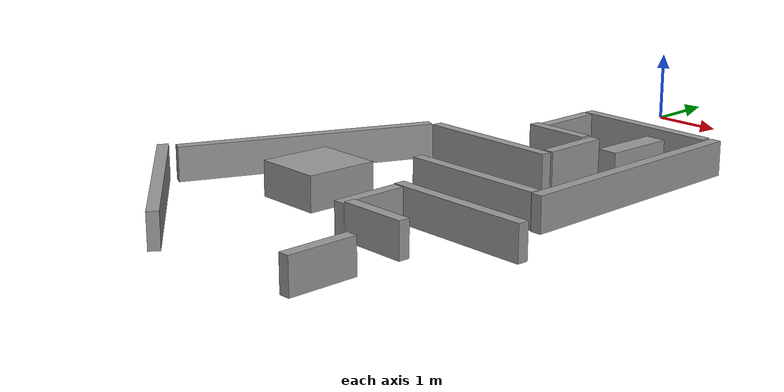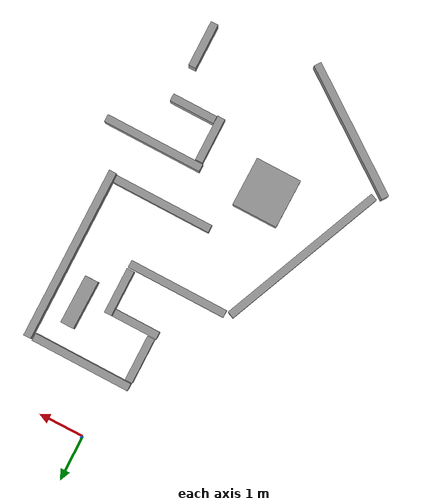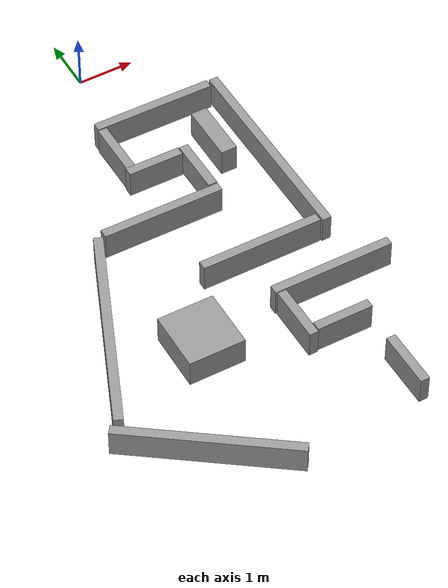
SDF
<sdf version="1.6">
 <model name="ws18_amr_master">
  <link name="link_0">
   <pose>-0.315045 -1.91588 -0 0 -0 0</pose>
   <inertial>
    <mass>0.0824965</mass>
    <inertia>
     <ixx>0.00863488</ixx>
     <ixy>0</ixy>
     <ixz>0</ixz>
     <iyy>0.0019429</iyy>
     <iyz>0</iyz>
     <izz>0.00705746</izz>
    </inertia>
   </inertial>
   <visual name="visual">
    <geometry><box><size>0.163038 1 0.505999</size></box></geometry>
    <material>
     <lighting>1</lighting>
     <script><uri>file://media/materials/scripts/gazebo.material</uri><name>Gazebo/Grey</name></script>
     <ambient>0.3 0.3 0.3 1</ambient>
     <diffuse>0.7 0.7 0.7 1</diffuse>
     <specular>0.01 0.01 0.01 1</specular>
     <emissive>0 0 0 1</emissive>
    </material>
   </visual>
   <collision name="collision">
    <geometry><box><size>0.163038 1 0.505999</size></box></geometry>
    <surface>
     <friction>
      <ode><mu>1</mu><mu2>1</mu2><fdir1>0 0 0</fdir1><slip1>0</slip1><slip2>0</slip2></ode>
      <torsional>
       <coefficient>1</coefficient>
       <patch_radius>0</patch_radius>
       <surface_radius>0</surface_radius>
       <use_patch_radius>1</use_patch_radius>
       <ode><slip>0</slip></ode>
      </torsional>
     </friction>
     <bounce><restitution_coefficient>0</restitution_coefficient><threshold>1e+06</threshold></bounce>
     <contact>
      <collide_without_contact>0</collide_without_contact>
      <collide_without_contact_bitmask>1</collide_without_contact_bitmask>
      <collide_bitmask>1</collide_bitmask>
      <ode>
       <soft_cfm>0</soft_cfm>
       <soft_erp>0.2</soft_erp>
       <kp>1e+13</kp>
       <kd>1</kd>
       <max_vel>0.01</max_vel>
       <min_depth>0</min_depth>
      </ode>
      <bullet>
       <split_impulse>1</split_impulse>
       <split_impulse_penetration_threshold>-0.01</split_impulse_penetration_threshold>
       <soft_cfm>0</soft_cfm>
       <soft_erp>0.2</soft_erp>
       <kp>1e+13</kp>
       <kd>1</kd>
      </bullet>
     </contact>
    </surface>
   </collision>
  </link>
  <link name="link_0_clone">
   <pose>0.710611 -1.33183 0.001064 0 0.012172 1.55915</pose>
   <inertial>
    <mass>0.180006</mass>
    <inertia>
     <ixx>0.0752589</ixx>
     <ixy>0</ixy>
     <ixz>0</ixz>
     <iyy>0.00423938</iyy>
     <iyz>0</iyz>
     <izz>0.071817</izz>
    </inertia>
   </inertial>
   <visual name="visual">
    <geometry><box><size>0.163038 2.18199 0.505999</size></box></geometry>
    <material>
     <lighting>1</lighting>
     <script><uri>file://media/materials/scripts/gazebo.material</uri><name>Gazebo/Grey</name></script>
     <ambient>0.3 0.3 0.3 1</ambient>
     <diffuse>0.7 0.7 0.7 1</diffuse>
     <specular>0.01 0.01 0.01 1</specular>
     <emissive>0 0 0 1</emissive>
     <shader type="pixel"/>
    </material>
   </visual>
   <collision name="collision">
    <geometry><box><size>0.163038 2.18199 0.505999</size></box></geometry>
    <surface>
     <friction>
      <ode><mu>1</mu><mu2>1</mu2><fdir1>0 0 0</fdir1><slip1>0</slip1><slip2>0</slip2></ode>
      <torsional>
       <coefficient>1</coefficient>
       <patch_radius>0</patch_radius>
       <surface_radius>0</surface_radius>
       <use_patch_radius>1</use_patch_radius>
       <ode><slip>0</slip></ode>
      </torsional>
     </friction>
     <bounce><restitution_coefficient>0</restitution_coefficient><threshold>1e+06</threshold></bounce>
     <contact>
      <collide_without_contact>0</collide_without_contact>
      <collide_without_contact_bitmask>1</collide_without_contact_bitmask>
      <collide_bitmask>1</collide_bitmask>
      <ode>
       <soft_cfm>0</soft_cfm>
       <soft_erp>0.2</soft_erp>
       <kp>1e+13</kp>
       <kd>1</kd>
       <max_vel>0.01</max_vel>
       <min_depth>0</min_depth>
      </ode>
      <bullet>
       <split_impulse>1</split_impulse>
       <split_impulse_penetration_threshold>-0.01</split_impulse_penetration_threshold>
       <soft_cfm>0</soft_cfm>
       <soft_erp>0.2</soft_erp>
       <kp>1e+13</kp>
       <kd>1</kd>
      </bullet>
     </contact>
    </surface>
   </collision>
  </link>
  <link name="link_0_clone_0">
   <pose>0.685279 -2.9377 -0 0 -0 0</pose>
   <inertial>
    <mass>0.0824965</mass>
    <inertia>
     <ixx>0.00863488</ixx>
     <ixy>0</ixy>
     <ixz>0</ixz>
     <iyy>0.0019429</iyy>
     <iyz>0</iyz>
     <izz>0.00705746</izz>
    </inertia>
   </inertial>
   <visual name="visual">
    <geometry><box><size>0.163038 1 0.505999</size></box></geometry>
    <material>
     <lighting>1</lighting>
     <script><uri>file://media/materials/scripts/gazebo.material</uri><name>Gazebo/Grey</name></script>
     <ambient>0.3 0.3 0.3 1</ambient>
     <diffuse>0.7 0.7 0.7 1</diffuse>
     <specular>0.01 0.01 0.01 1</specular>
     <emissive>0 0 0 1</emissive>
     <shader type="pixel"/>
    </material>
   </visual>
   <collision name="collision">
    <geometry><box><size>0.163038 1 0.505999</size></box></geometry>
    <surface>
     <friction>
      <ode><mu>1</mu><mu2>1</mu2><fdir1>0 0 0</fdir1><slip1>0</slip1><slip2>0</slip2></ode>
      <torsional>
       <coefficient>1</coefficient>
       <patch_radius>0</patch_radius>
       <surface_radius>0</surface_radius>
       <use_patch_radius>1</use_patch_radius>
       <ode><slip>0</slip></ode>
      </torsional>
     </friction>
     <bounce><restitution_coefficient>0</restitution_coefficient><threshold>1e+06</threshold></bounce>
     <contact>
      <collide_without_contact>0</collide_without_contact>
      <collide_without_contact_bitmask>1</collide_without_contact_bitmask>
      <collide_bitmask>1</collide_bitmask>
      <ode>
       <soft_cfm>0</soft_cfm>
       <soft_erp>0.2</soft_erp>
       <kp>1e+13</kp>
       <kd>1</kd>
       <max_vel>0.01</max_vel>
       <min_depth>0</min_depth>
      </ode>
      <bullet>
       <split_impulse>1</split_impulse>
       <split_impulse_penetration_threshold>-0.01</split_impulse_penetration_threshold>
       <soft_cfm>0</soft_cfm>
       <soft_erp>0.2</soft_erp>
       <kp>1e+13</kp>
       <kd>1</kd>
      </bullet>
     </contact>
    </surface>
   </collision>
  </link>
  <link name="link_0_clone_1">
   <pose>1.92532 -3.16382 -0 0 -0 0</pose>
   <inertial>
    <mass>0.311198</mass>
    <inertia>
     <ixx>0.375669</ixx>
     <ixy>0</ixy>
     <ixz>0</ixz>
     <iyy>0.00732913</iyy>
     <iyz>0</iyz>
     <izz>0.369718</izz>
    </inertia>
   </inertial>
   <visual name="visual">
    <geometry><box><size>0.163038 3.77227 0.505999</size></box></geometry>
    <material>
     <lighting>1</lighting>
     <script><uri>file://media/materials/scripts/gazebo.material</uri><name>Gazebo/Grey</name></script>
     <ambient>0.3 0.3 0.3 1</ambient>
     <diffuse>0.7 0.7 0.7 1</diffuse>
     <specular>0.01 0.01 0.01 1</specular>
     <emissive>0 0 0 1</emissive>
     <shader type="pixel"/>
    </material>
   </visual>
   <collision name="collision">
    <geometry><box><size>0.163038 3.77227 0.505999</size></box></geometry>
    <surface>
     <friction>
      <ode><mu>1</mu><mu2>1</mu2><fdir1>0 0 0</fdir1><slip1>0</slip1><slip2>0</slip2></ode>
      <torsional>
       <coefficient>1</coefficient>
       <patch_radius>0</patch_radius>
       <surface_radius>0</surface_radius>
       <use_patch_radius>1</use_patch_radius>
       <ode><slip>0</slip></ode>
      </torsional>
     </friction>
     <bounce><restitution_coefficient>0</restitution_coefficient><threshold>1e+06</threshold></bounce>
     <contact>
      <collide_without_contact>0</collide_without_contact>
      <collide_without_contact_bitmask>1</collide_without_contact_bitmask>
      <collide_bitmask>1</collide_bitmask>
      <ode>
       <soft_cfm>0</soft_cfm>
       <soft_erp>0.2</soft_erp>
       <kp>1e+13</kp>
       <kd>1</kd>
       <max_vel>0.01</max_vel>
       <min_depth>0</min_depth>
      </ode>
      <bullet>
       <split_impulse>1</split_impulse>
       <split_impulse_penetration_threshold>-0.01</split_impulse_penetration_threshold>
       <soft_cfm>0</soft_cfm>
       <soft_erp>0.2</soft_erp>
       <kp>1e+13</kp>
       <kd>1</kd>
      </bullet>
     </contact>
    </surface>
   </collision>
  </link>
  <link name="link_0_clone_1_clone">
   <pose>-2.27947 -5.2883 -0 -0 -0 -0.406594</pose>
   <inertial>
    <mass>0.311198</mass>
    <inertia>
     <ixx>0.375669</ixx>
     <ixy>0</ixy>
     <ixz>0</ixz>
     <iyy>0.00732913</iyy>
     <iyz>0</iyz>
     <izz>0.369718</izz>
    </inertia>
   </inertial>
   <visual name="visual">
    <geometry><box><size>0.163038 3.77227 0.505999</size></box></geometry>
    <material>
     <lighting>1</lighting>
     <script><uri>file://media/materials/scripts/gazebo.material</uri><name>Gazebo/Grey</name></script>
     <ambient>0.3 0.3 0.3 1</ambient>
     <diffuse>0.7 0.7 0.7 1</diffuse>
     <specular>0.01 0.01 0.01 1</specular>
     <emissive>0 0 0 1</emissive>
     <shader type="pixel"/>
    </material>
   </visual>
   <collision name="collision">
    <geometry><box><size>0.163038 3.77227 0.505999</size></box></geometry>
    <surface>
     <friction>
      <ode><mu>1</mu><mu2>1</mu2><fdir1>0 0 0</fdir1><slip1>0</slip1><slip2>0</slip2></ode>
      <torsional>
       <coefficient>1</coefficient>
       <patch_radius>0</patch_radius>
       <surface_radius>0</surface_radius>
       <use_patch_radius>1</use_patch_radius>
       <ode><slip>0</slip></ode>
      </torsional>
     </friction>
     <bounce><restitution_coefficient>0</restitution_coefficient><threshold>1e+06</threshold></bounce>
     <contact>
      <collide_without_contact>0</collide_without_contact>
      <collide_without_contact_bitmask>1</collide_without_contact_bitmask>
      <collide_bitmask>1</collide_bitmask>
      <ode>
       <soft_cfm>0</soft_cfm>
       <soft_erp>0.2</soft_erp>
       <kp>1e+13</kp>
       <kd>1</kd>
       <max_vel>0.01</max_vel>
       <min_depth>0</min_depth>
      </ode>
      <bullet>
       <split_impulse>1</split_impulse>
       <split_impulse_penetration_threshold>-0.01</split_impulse_penetration_threshold>
       <soft_cfm>0</soft_cfm>
       <soft_erp>0.2</soft_erp>
       <kp>1e+13</kp>
       <kd>1</kd>
      </bullet>
     </contact>
    </surface>
   </collision>
  </link>
  <link name="link_0_clone_1_clone_clone">
   <pose>-2.0016 -8.01046 -0 0 0 -2.2011</pose>
   <inertial>
    <mass>0.252342</mass>
    <inertia>
     <ixx>0.202136</ixx>
     <ixy>0</ixy>
     <ixz>0</ixz>
     <iyy>0.005943</iyy>
     <iyz>0</iyz>
     <izz>0.197311</izz>
    </inertia>
   </inertial>
   <visual name="visual">
    <geometry><box><size>0.163038 3.05883 0.505999</size></box></geometry>
    <material>
     <lighting>1</lighting>
     <script><uri>file://media/materials/scripts/gazebo.material</uri><name>Gazebo/Grey</name></script>
     <ambient>0.3 0.3 0.3 1</ambient>
     <diffuse>0.7 0.7 0.7 1</diffuse>
     <specular>0.01 0.01 0.01 1</specular>
     <emissive>0 0 0 1</emissive>
     <shader type="pixel"/>
    </material>
   </visual>
   <collision name="collision">
    <geometry><box><size>0.163038 3.05883 0.505999</size></box></geometry>
    <surface>
     <friction>
      <ode><mu>1</mu><mu2>1</mu2><fdir1>0 0 0</fdir1><slip1>0</slip1><slip2>0</slip2></ode>
      <torsional>
       <coefficient>1</coefficient>
       <patch_radius>0</patch_radius>
       <surface_radius>0</surface_radius>
       <use_patch_radius>1</use_patch_radius>
       <ode><slip>0</slip></ode>
      </torsional>
     </friction>
     <bounce><restitution_coefficient>0</restitution_coefficient><threshold>1e+06</threshold></bounce>
     <contact>
      <collide_without_contact>0</collide_without_contact>
      <collide_without_contact_bitmask>1</collide_without_contact_bitmask>
      <collide_bitmask>1</collide_bitmask>
      <ode>
       <soft_cfm>0</soft_cfm>
       <soft_erp>0.2</soft_erp>
       <kp>1e+13</kp>
       <kd>1</kd>
       <max_vel>0.01</max_vel>
       <min_depth>0</min_depth>
      </ode>
      <bullet>
       <split_impulse>1</split_impulse>
       <split_impulse_penetration_threshold>-0.01</split_impulse_penetration_threshold>
       <soft_cfm>0</soft_cfm>
       <soft_erp>0.2</soft_erp>
       <kp>1e+13</kp>
       <kd>1</kd>
      </bullet>
     </contact>
    </surface>
   </collision>
  </link>
  <link name="link_0_clone_2">
   <pose>0.470275 -6.53761 -0 0 -0 0</pose>
   <inertial>
    <mass>0.0824965</mass>
    <inertia>
     <ixx>0.00863488</ixx>
     <ixy>0</ixy>
     <ixz>0</ixz>
     <iyy>0.0019429</iyy>
     <iyz>0</iyz>
     <izz>0.00705746</izz>
    </inertia>
   </inertial>
   <visual name="visual">
    <geometry><box><size>0.163038 1 0.505999</size></box></geometry>
    <material>
     <lighting>1</lighting>
     <script><uri>file://media/materials/scripts/gazebo.material</uri><name>Gazebo/Grey</name></script>
     <ambient>0.3 0.3 0.3 1</ambient>
     <diffuse>0.7 0.7 0.7 1</diffuse>
     <specular>0.01 0.01 0.01 1</specular>
     <emissive>0 0 0 1</emissive>
     <shader type="pixel"/>
    </material>
   </visual>
   <collision name="collision">
    <geometry><box><size>0.163038 1 0.505999</size></box></geometry>
    <surface>
     <friction>
      <ode><mu>1</mu><mu2>1</mu2><fdir1>0 0 0</fdir1><slip1>0</slip1><slip2>0</slip2></ode>
      <torsional>
       <coefficient>1</coefficient>
       <patch_radius>0</patch_radius>
       <surface_radius>0</surface_radius>
       <use_patch_radius>1</use_patch_radius>
       <ode><slip>0</slip></ode>
      </torsional>
     </friction>
     <bounce><restitution_coefficient>0</restitution_coefficient><threshold>1e+06</threshold></bounce>
     <contact>
      <collide_without_contact>0</collide_without_contact>
      <collide_without_contact_bitmask>1</collide_without_contact_bitmask>
      <collide_bitmask>1</collide_bitmask>
      <ode>
       <soft_cfm>0</soft_cfm>
       <soft_erp>0.2</soft_erp>
       <kp>1e+13</kp>
       <kd>1</kd>
       <max_vel>0.01</max_vel>
       <min_depth>0</min_depth>
      </ode>
      <bullet>
       <split_impulse>1</split_impulse>
       <split_impulse_penetration_threshold>-0.01</split_impulse_penetration_threshold>
       <soft_cfm>0</soft_cfm>
       <soft_erp>0.2</soft_erp>
       <kp>1e+13</kp>
       <kd>1</kd>
      </bullet>
     </contact>
    </surface>
   </collision>
  </link>
  <link name="link_0_clone_2_clone">
   <pose>1.4792 -8.1933 -0 0 -0 0</pose>
   <inertial>
    <mass>0.0824965</mass>
    <inertia>
     <ixx>0.00863488</ixx>
     <ixy>0</ixy>
     <ixz>0</ixz>
     <iyy>0.0019429</iyy>
     <iyz>0</iyz>
     <izz>0.00705746</izz>
    </inertia>
   </inertial>
   <visual name="visual">
    <geometry><box><size>0.163038 1 0.505999</size></box></geometry>
    <material>
     <lighting>1</lighting>
     <script><uri>file://media/materials/scripts/gazebo.material</uri><name>Gazebo/Grey</name></script>
     <ambient>0.3 0.3 0.3 1</ambient>
     <diffuse>0.7 0.7 0.7 1</diffuse>
     <specular>0.01 0.01 0.01 1</specular>
     <emissive>0 0 0 1</emissive>
     <shader type="pixel"/>
    </material>
   </visual>
   <collision name="collision">
    <geometry><box><size>0.163038 1 0.505999</size></box></geometry>
    <surface>
     <friction>
      <ode><mu>1</mu><mu2>1</mu2><fdir1>0 0 0</fdir1><slip1>0</slip1><slip2>0</slip2></ode>
      <torsional>
       <coefficient>1</coefficient>
       <patch_radius>0</patch_radius>
       <surface_radius>0</surface_radius>
       <use_patch_radius>1</use_patch_radius>
       <ode><slip>0</slip></ode>
      </torsional>
     </friction>
     <bounce><restitution_coefficient>0</restitution_coefficient><threshold>1e+06</threshold></bounce>
     <contact>
      <collide_without_contact>0</collide_without_contact>
      <collide_without_contact_bitmask>1</collide_without_contact_bitmask>
      <collide_bitmask>1</collide_bitmask>
      <ode>
       <soft_cfm>0</soft_cfm>
       <soft_erp>0.2</soft_erp>
       <kp>1e+13</kp>
       <kd>1</kd>
       <max_vel>0.01</max_vel>
       <min_depth>0</min_depth>
      </ode>
      <bullet>
       <split_impulse>1</split_impulse>
       <split_impulse_penetration_threshold>-0.01</split_impulse_penetration_threshold>
       <soft_cfm>0</soft_cfm>
       <soft_erp>0.2</soft_erp>
       <kp>1e+13</kp>
       <kd>1</kd>
      </bullet>
     </contact>
    </surface>
   </collision>
  </link>
  <link name="link_0_clone_clone">
   <pose>0.080109 -2.51757 0.018209 0 0.012172 1.55915</pose>
   <inertial>
    <mass>0.0824965</mass>
    <inertia>
     <ixx>0.00863488</ixx>
     <ixy>0</ixy>
     <ixz>0</ixz>
     <iyy>0.0019429</iyy>
     <iyz>0</iyz>
     <izz>0.00705746</izz>
    </inertia>
   </inertial>
   <visual name="visual">
    <geometry><box><size>0.163038 1 0.505999</size></box></geometry>
    <material>
     <lighting>1</lighting>
     <script><uri>file://media/materials/scripts/gazebo.material</uri><name>Gazebo/Grey</name></script>
     <ambient>0.3 0.3 0.3 1</ambient>
     <diffuse>0.7 0.7 0.7 1</diffuse>
     <specular>0.01 0.01 0.01 1</specular>
     <emissive>0 0 0 1</emissive>
     <shader type="pixel"/>
    </material>
   </visual>
   <collision name="collision">
    <geometry><box><size>0.163038 1 0.505999</size></box></geometry>
    <surface>
     <friction>
      <ode><mu>1</mu><mu2>1</mu2><fdir1>0 0 0</fdir1><slip1>0</slip1><slip2>0</slip2></ode>
      <torsional>
       <coefficient>1</coefficient>
       <patch_radius>0</patch_radius>
       <surface_radius>0</surface_radius>
       <use_patch_radius>1</use_patch_radius>
       <ode><slip>0</slip></ode>
      </torsional>
     </friction>
     <bounce><restitution_coefficient>0</restitution_coefficient><threshold>1e+06</threshold></bounce>
     <contact>
      <collide_without_contact>0</collide_without_contact>
      <collide_without_contact_bitmask>1</collide_without_contact_bitmask>
      <collide_bitmask>1</collide_bitmask>
      <ode>
       <soft_cfm>0</soft_cfm>
       <soft_erp>0.2</soft_erp>
       <kp>1e+13</kp>
       <kd>1</kd>
       <max_vel>0.01</max_vel>
       <min_depth>0</min_depth>
      </ode>
      <bullet>
       <split_impulse>1</split_impulse>
       <split_impulse_penetration_threshold>-0.01</split_impulse_penetration_threshold>
       <soft_cfm>0</soft_cfm>
       <soft_erp>0.2</soft_erp>
       <kp>1e+13</kp>
       <kd>1</kd>
      </bullet>
     </contact>
    </surface>
   </collision>
  </link>
  <link name="link_0_clone_clone_0">
   <pose>-0.33418 -3.53818 0.001064 0 0.012172 1.55915</pose>
   <inertial>
    <mass>0.180006</mass>
    <inertia>
     <ixx>0.0752589</ixx>
     <ixy>0</ixy>
     <ixz>0</ixz>
     <iyy>0.00423938</iyy>
     <iyz>0</iyz>
     <izz>0.071817</izz>
    </inertia>
   </inertial>
   <visual name="visual">
    <geometry><box><size>0.163038 2.18199 0.505999</size></box></geometry>
    <material>
     <lighting>1</lighting>
     <script><uri>file://media/materials/scripts/gazebo.material</uri><name>Gazebo/Grey</name></script>
     <ambient>0.3 0.3 0.3 1</ambient>
     <diffuse>0.7 0.7 0.7 1</diffuse>
     <specular>0.01 0.01 0.01 1</specular>
     <emissive>0 0 0 1</emissive>
     <shader type="pixel"/>
    </material>
   </visual>
   <collision name="collision">
    <geometry><box><size>0.163038 2.18199 0.505999</size></box></geometry>
    <surface>
     <friction>
      <ode><mu>1</mu><mu2>1</mu2><fdir1>0 0 0</fdir1><slip1>0</slip1><slip2>0</slip2></ode>
      <torsional>
       <coefficient>1</coefficient>
       <patch_radius>0</patch_radius>
       <surface_radius>0</surface_radius>
       <use_patch_radius>1</use_patch_radius>
       <ode><slip>0</slip></ode>
      </torsional>
     </friction>
     <bounce><restitution_coefficient>0</restitution_coefficient><threshold>1e+06</threshold></bounce>
     <contact>
      <collide_without_contact>0</collide_without_contact>
      <collide_without_contact_bitmask>1</collide_without_contact_bitmask>
      <collide_bitmask>1</collide_bitmask>
      <ode>
       <soft_cfm>0</soft_cfm>
       <soft_erp>0.2</soft_erp>
       <kp>1e+13</kp>
       <kd>1</kd>
       <max_vel>0.01</max_vel>
       <min_depth>0</min_depth>
      </ode>
      <bullet>
       <split_impulse>1</split_impulse>
       <split_impulse_penetration_threshold>-0.01</split_impulse_penetration_threshold>
       <soft_cfm>0</soft_cfm>
       <soft_erp>0.2</soft_erp>
       <kp>1e+13</kp>
       <kd>1</kd>
      </bullet>
     </contact>
    </surface>
   </collision>
  </link>
  <link name="link_0_clone_clone_1">
   <pose>0.725389 -4.9345 -8.7e-05 0 0.012172 1.55915</pose>
   <inertial>
    <mass>0.180006</mass>
    <inertia>
     <ixx>0.0752589</ixx>
     <ixy>0</ixy>
     <ixz>0</ixz>
     <iyy>0.00423938</iyy>
     <iyz>0</iyz>
     <izz>0.071817</izz>
    </inertia>
   </inertial>
   <visual name="visual">
    <geometry><box><size>0.163038 2.18199 0.505999</size></box></geometry>
    <material>
     <lighting>1</lighting>
     <script><uri>file://media/materials/scripts/gazebo.material</uri><name>Gazebo/Grey</name></script>
     <ambient>0.3 0.3 0.3 1</ambient>
     <diffuse>0.7 0.7 0.7 1</diffuse>
     <specular>0.01 0.01 0.01 1</specular>
     <emissive>0 0 0 1</emissive>
     <shader type="pixel"/>
    </material>
   </visual>
   <collision name="collision">
    <geometry><box><size>0.163038 2.18199 0.505999</size></box></geometry>
    <surface>
     <friction>
      <ode><mu>1</mu><mu2>1</mu2><fdir1>0 0 0</fdir1><slip1>0</slip1><slip2>0</slip2></ode>
      <torsional>
       <coefficient>1</coefficient>
       <patch_radius>0</patch_radius>
       <surface_radius>0</surface_radius>
       <use_patch_radius>1</use_patch_radius>
       <ode><slip>0</slip></ode>
      </torsional>
     </friction>
     <bounce><restitution_coefficient>0</restitution_coefficient><threshold>1e+06</threshold></bounce>
     <contact>
      <collide_without_contact>0</collide_without_contact>
      <collide_without_contact_bitmask>1</collide_without_contact_bitmask>
      <collide_bitmask>1</collide_bitmask>
      <ode>
       <soft_cfm>0</soft_cfm>
       <soft_erp>0.2</soft_erp>
       <kp>1e+13</kp>
       <kd>1</kd>
       <max_vel>0.01</max_vel>
       <min_depth>0</min_depth>
      </ode>
      <bullet>
       <split_impulse>1</split_impulse>
       <split_impulse_penetration_threshold>-0.01</split_impulse_penetration_threshold>
       <soft_cfm>0</soft_cfm>
       <soft_erp>0.2</soft_erp>
       <kp>1e+13</kp>
       <kd>1</kd>
      </bullet>
     </contact>
    </surface>
   </collision>
  </link>
  <link name="link_0_clone_clone_2">
   <pose>1.45952 -5.95289 0.001064 0 0.012172 1.55915</pose>
   <inertial>
    <mass>0.180006</mass>
    <inertia>
     <ixx>0.0752589</ixx>
     <ixy>0</ixy>
     <ixz>0</ixz>
     <iyy>0.00423938</iyy>
     <iyz>0</iyz>
     <izz>0.071817</izz>
    </inertia>
   </inertial>
   <visual name="visual">
    <geometry><box><size>0.163038 2.18199 0.505999</size></box></geometry>
    <material>
     <lighting>1</lighting>
     <script><uri>file://media/materials/scripts/gazebo.material</uri><name>Gazebo/Grey</name></script>
     <ambient>0.3 0.3 0.3 1</ambient>
     <diffuse>0.7 0.7 0.7 1</diffuse>
     <specular>0.01 0.01 0.01 1</specular>
     <emissive>0 0 0 1</emissive>
     <shader type="pixel"/>
    </material>
   </visual>
   <collision name="collision">
    <geometry><box><size>0.163038 2.18199 0.505999</size></box></geometry>
    <surface>
     <friction>
      <ode><mu>1</mu><mu2>1</mu2><fdir1>0 0 0</fdir1><slip1>0</slip1><slip2>0</slip2></ode>
      <torsional>
       <coefficient>1</coefficient>
       <patch_radius>0</patch_radius>
       <surface_radius>0</surface_radius>
       <use_patch_radius>1</use_patch_radius>
       <ode><slip>0</slip></ode>
      </torsional>
     </friction>
     <bounce><restitution_coefficient>0</restitution_coefficient><threshold>1e+06</threshold></bounce>
     <contact>
      <collide_without_contact>0</collide_without_contact>
      <collide_without_contact_bitmask>1</collide_without_contact_bitmask>
      <collide_bitmask>1</collide_bitmask>
      <ode>
       <soft_cfm>0</soft_cfm>
       <soft_erp>0.2</soft_erp>
       <kp>1e+13</kp>
       <kd>1</kd>
       <max_vel>0.01</max_vel>
       <min_depth>0</min_depth>
      </ode>
      <bullet>
       <split_impulse>1</split_impulse>
       <split_impulse_penetration_threshold>-0.01</split_impulse_penetration_threshold>
       <soft_cfm>0</soft_cfm>
       <soft_erp>0.2</soft_erp>
       <kp>1e+13</kp>
       <kd>1</kd>
      </bullet>
     </contact>
    </surface>
   </collision>
  </link>
  <link name="link_0_clone_clone_clone">
   <pose>1.05766 -6.94561 0.018209 0 0.012172 1.55915</pose>
   <inertial>
    <mass>0.0824965</mass>
    <inertia>
     <ixx>0.00863488</ixx>
     <ixy>0</ixy>
     <ixz>0</ixz>
     <iyy>0.0019429</iyy>
     <iyz>0</iyz>
     <izz>0.00705746</izz>
    </inertia>
   </inertial>
   <visual name="visual">
    <geometry><box><size>0.163038 1 0.505999</size></box></geometry>
    <material>
     <lighting>1</lighting>
     <script><uri>file://media/materials/scripts/gazebo.material</uri><name>Gazebo/Grey</name></script>
     <ambient>0.3 0.3 0.3 1</ambient>
     <diffuse>0.7 0.7 0.7 1</diffuse>
     <specular>0.01 0.01 0.01 1</specular>
     <emissive>0 0 0 1</emissive>
     <shader type="pixel"/>
    </material>
   </visual>
   <collision name="collision">
    <geometry><box><size>0.163038 1 0.505999</size></box></geometry>
    <surface>
     <friction>
      <ode><mu>1</mu><mu2>1</mu2><fdir1>0 0 0</fdir1><slip1>0</slip1><slip2>0</slip2></ode>
      <torsional>
       <coefficient>1</coefficient>
       <patch_radius>0</patch_radius>
       <surface_radius>0</surface_radius>
       <use_patch_radius>1</use_patch_radius>
       <ode><slip>0</slip></ode>
      </torsional>
     </friction>
     <bounce><restitution_coefficient>0</restitution_coefficient><threshold>1e+06</threshold></bounce>
     <contact>
      <collide_without_contact>0</collide_without_contact>
      <collide_without_contact_bitmask>1</collide_without_contact_bitmask>
      <collide_bitmask>1</collide_bitmask>
      <ode>
       <soft_cfm>0</soft_cfm>
       <soft_erp>0.2</soft_erp>
       <kp>1e+13</kp>
       <kd>1</kd>
       <max_vel>0.01</max_vel>
       <min_depth>0</min_depth>
      </ode>
      <bullet>
       <split_impulse>1</split_impulse>
       <split_impulse_penetration_threshold>-0.01</split_impulse_penetration_threshold>
       <soft_cfm>0</soft_cfm>
       <soft_erp>0.2</soft_erp>
       <kp>1e+13</kp>
       <kd>1</kd>
      </bullet>
     </contact>
    </surface>
   </collision>
  </link>
  <link name="link_0_clone_clone_clone_clone">
   <pose>-1.04676 -6.10357 0.018209 0 0.012172 1.55915</pose>
   <inertial>
    <mass>0.539493</mass>
    <inertia>
     <ixx>0.0564686</ixx>
     <ixy>0</ixy>
     <ixz>0</ixz>
     <iyy>0.0626183</iyy>
     <iyz>0</iyz>
     <izz>0.0960654</izz>
    </inertia>
   </inertial>
   <visual name="visual">
    <geometry><box><size>1.0662 1 0.505999</size></box></geometry>
    <material>
     <lighting>1</lighting>
     <script><uri>file://media/materials/scripts/gazebo.material</uri><name>Gazebo/Grey</name></script>
     <ambient>0.3 0.3 0.3 1</ambient>
     <diffuse>0.7 0.7 0.7 1</diffuse>
     <specular>0.01 0.01 0.01 1</specular>
     <emissive>0 0 0 1</emissive>
     <shader type="pixel"/>
    </material>
   </visual>
   <collision name="collision">
    <geometry><box><size>1.0662 1 0.505999</size></box></geometry>
    <surface>
     <friction>
      <ode><mu>1</mu><mu2>1</mu2><fdir1>0 0 0</fdir1><slip1>0</slip1><slip2>0</slip2></ode>
      <torsional>
       <coefficient>1</coefficient>
       <patch_radius>0</patch_radius>
       <surface_radius>0</surface_radius>
       <use_patch_radius>1</use_patch_radius>
       <ode><slip>0</slip></ode>
      </torsional>
     </friction>
     <bounce><restitution_coefficient>0</restitution_coefficient><threshold>1e+06</threshold></bounce>
     <contact>
      <collide_without_contact>0</collide_without_contact>
      <collide_without_contact_bitmask>1</collide_without_contact_bitmask>
      <collide_bitmask>1</collide_bitmask>
      <ode>
       <soft_cfm>0</soft_cfm>
       <soft_erp>0.2</soft_erp>
       <kp>1e+13</kp>
       <kd>1</kd>
       <max_vel>0.01</max_vel>
       <min_depth>0</min_depth>
      </ode>
      <bullet>
       <split_impulse>1</split_impulse>
       <split_impulse_penetration_threshold>-0.01</split_impulse_penetration_threshold>
       <soft_cfm>0</soft_cfm>
       <soft_erp>0.2</soft_erp>
       <kp>1e+13</kp>
       <kd>1</kd>
      </bullet>
     </contact>
    </surface>
   </collision>
  </link>
  <link name="link_0_clone_clone_clone_clone_clone">
   <pose>1.30588 -2.38981 0.018209 0 0.012172 1.55915</pose>
   <inertial>
    <mass>0.158466</mass>
    <inertia>
     <ixx>0.00452042</ixx>
     <ixy>0</ixy>
     <ixz>0</ixz>
     <iyy>0.018393</iyy>
     <iyz>0</iyz>
     <izz>0.0161513</izz>
    </inertia>
   </inertial>
   <visual name="visual">
    <geometry><box><size>1.0662 0.293731 0.505999</size></box></geometry>
    <material>
     <lighting>1</lighting>
     <script><uri>file://media/materials/scripts/gazebo.material</uri><name>Gazebo/Grey</name></script>
     <ambient>0.3 0.3 0.3 1</ambient>
     <diffuse>0.7 0.7 0.7 1</diffuse>
     <specular>0.01 0.01 0.01 1</specular>
     <emissive>0 0 0 1</emissive>
     <shader type="pixel"/>
    </material>
   </visual>
   <collision name="collision">
    <geometry><box><size>1.0662 0.293731 0.505999</size></box></geometry>
    <surface>
     <friction>
      <ode><mu>1</mu><mu2>1</mu2><fdir1>0 0 0</fdir1><slip1>0</slip1><slip2>0</slip2></ode>
      <torsional>
       <coefficient>1</coefficient>
       <patch_radius>0</patch_radius>
       <surface_radius>0</surface_radius>
       <use_patch_radius>1</use_patch_radius>
       <ode><slip>0</slip></ode>
      </torsional>
     </friction>
     <bounce><restitution_coefficient>0</restitution_coefficient><threshold>1e+06</threshold></bounce>
     <contact>
      <collide_without_contact>0</collide_without_contact>
      <collide_without_contact_bitmask>1</collide_without_contact_bitmask>
      <collide_bitmask>1</collide_bitmask>
      <ode>
       <soft_cfm>0</soft_cfm>
       <soft_erp>0.2</soft_erp>
       <kp>1e+13</kp>
       <kd>1</kd>
       <max_vel>0.01</max_vel>
       <min_depth>0</min_depth>
      </ode>
      <bullet>
       <split_impulse>1</split_impulse>
       <split_impulse_penetration_threshold>-0.01</split_impulse_penetration_threshold>
       <soft_cfm>0</soft_cfm>
       <soft_erp>0.2</soft_erp>
       <kp>1e+13</kp>
       <kd>1</kd>
      </bullet>
     </contact>
    </surface>
   </collision>
  </link>
  <static>1</static>
 </model>
</sdf>
